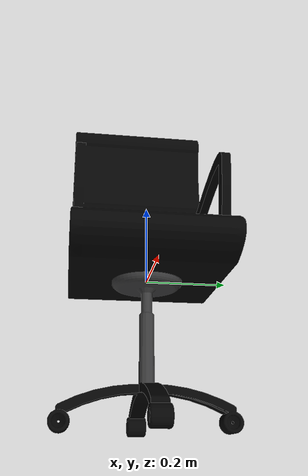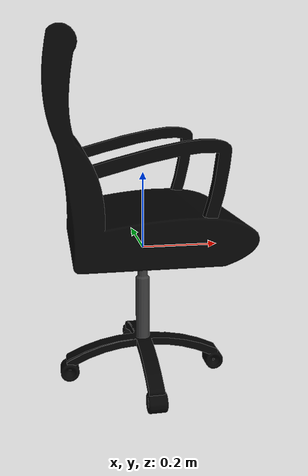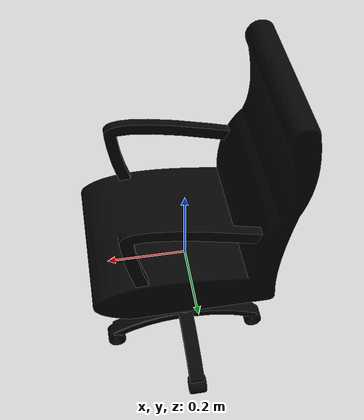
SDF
<?xml version='1.0' ?>
<sdf version='1.6'>
  <model name='office_chair'>
    <static>false</static>
    <link name='link'>
      <collision name='collision'>
        <geometry>
          <mesh>
            <uri>model://volta_simulation/models/office_chair/meshes/office_chair.dae</uri>
          </mesh>
        </geometry>
        <surface>
          <friction>
            <ode>
              <mu>100</mu>
              <mu2>50</mu2>
            </ode>
          </friction>
        </surface>
      </collision>
      <visual name='visual'>
        <geometry>
          <mesh>
            <uri>model://volta_simulation/models/office_chair/meshes/office_chair.dae</uri>
          </mesh>
        </geometry>
        <material>
          <script>
            <uri>model://volta_simulation/models/office_chair/materials/scripts</uri>
            <uri>model://volta_simulation/models/office_chair/materials/textures</uri>
            <name>office_chair</name>
          </script>
        </material>
      </visual>
      <inertial>
        <pose>-0.05 0 0 0 0 0</pose>
        <mass>6</mass>
        <inertia>
          <ixx>0.29 </ixx>
          <iyy>0.34 </iyy>
          <izz>0.17</izz>
          <ixy>0</ixy>
          <ixz>0.1 </ixz>
          <iyz>0</iyz>
        </inertia>
      </inertial>
    </link>
  </model>
</sdf>
